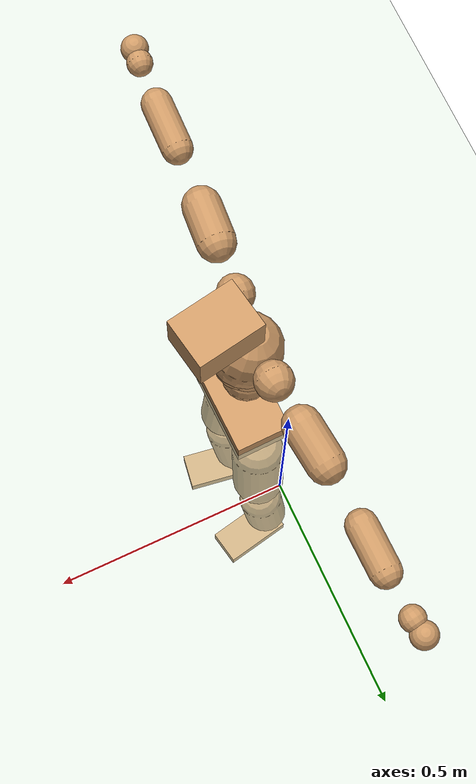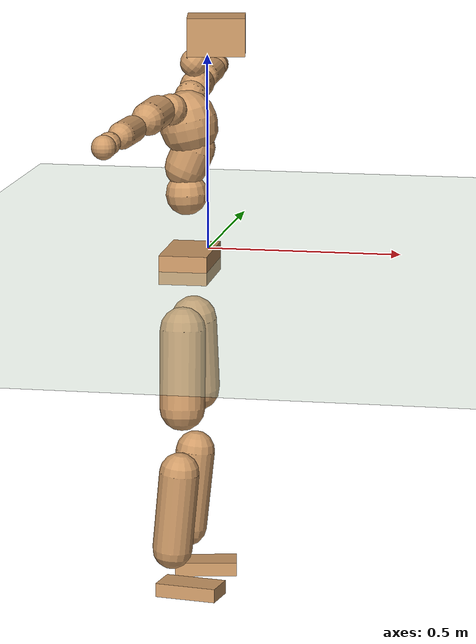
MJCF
<mujoco model="humanoid">
  <compiler coordinate="local" angle="radian"/>
  <default>
    <joint damping="0.0" armature="0.01" stiffness="0.0" limited="true"/>
    <geom conaffinity="1" condim="3" contype="7" margin="0.001" rgba="0.8 0.6 .4 1"/>
  </default>
  <asset>
    <texture type="skybox" builtin="gradient" rgb1=".4 .5 .6" rgb2="0 0 0" width="100" height="100"/>
    <texture builtin="flat" height="1278" mark="cross" markrgb="1 1 1" name="texgeom" random="0.01" rgb1="0.8 0.6 0.4" rgb2="0.8 0.6 0.4" type="cube" width="127"/>
    <texture builtin="checker" height="100" name="texplane" rgb1="0 0 0" rgb2="0.8 0.8 0.8" type="2d" width="100"/>
    <material name="MatPlane" reflectance="0.5" shininess="1" specular="1" texrepeat="60 60" texture="texplane"/>
    <material name="geom" texture="texgeom" texuniform="true"/>
  </asset>
  <worldbody>
    <light cutoff="100" diffuse="1 1 1" dir="-0 0 -1.3" directional="true" exponent="1" pos="0 0 1.3" specular=".1 .1 .1"/>
    <geom conaffinity="1" condim="3" name="floor" pos="0 0 0" rgba="0.8 0.9 0.8 1" size="100 100 .2" type="plane" material="MatPlane"/>
    <body name="Pelvis" pos="-0.0002 -0.1995 0.0137">
      <freejoint name="Pelvis"/>
      <geom type="box" contype="1" conaffinity="1" density="5359.375011" pos="-0.0066 -0.0001 -0.0117" size="0.0607 0.1022 0.0363" quat="0.9999 0.0000 0.0000 0.0104" name="Pelvis"/>
      <body name="L_Hip" pos="-0.0143 0.0632 -0.0844">
        <joint name="L_Hip_x" type="hinge" pos="0 0 0" axis="1 0 0" stiffness="1600" damping="160" armature="0.02" range="-180.0000 180.0000"/>
        <joint name="L_Hip_y" type="hinge" pos="0 0 0" axis="0 1 0" stiffness="1600" damping="160" armature="0.02" range="-180.0000 180.0000"/>
        <joint name="L_Hip_z" type="hinge" pos="0 0 0" axis="0 0 1" stiffness="1600" damping="160" armature="0.02" range="-180.0000 180.0000"/>
        <geom type="capsule" contype="1" conaffinity="1" density="2040.816327" size="0.0582" fromto="0.0018 0.0089 -0.0878 0.0055 0.0277 -0.2744" name="L_Hip"/>
        <body name="L_Knee" pos="0.0073 0.0366 -0.3621">
          <joint name="L_Knee_x" type="hinge" pos="0 0 0" axis="1 0 0" stiffness="1600" damping="160" armature="0.02" range="-180.0000 180.0000"/>
          <joint name="L_Knee_y" type="hinge" pos="0 0 0" axis="0 1 0" stiffness="1600" damping="160" armature="0.02" range="-180.0000 180.0000"/>
          <joint name="L_Knee_z" type="hinge" pos="0 0 0" axis="0 0 1" stiffness="1600" damping="160" armature="0.02" range="-180.0000 180.0000"/>
          <geom type="capsule" contype="1" conaffinity="1" density="1234.567901" size="0.0503" fromto="-0.0084 -0.0022 -0.0798 -0.0298 -0.0080 -0.2847" name="L_Knee"/>
          <body name="L_Ankle" pos="-0.0382 -0.0102 -0.3645">
            <joint name="L_Ankle_x" type="hinge" pos="0 0 0" axis="1 0 0" stiffness="1600" damping="160" armature="0.02" range="-180.0000 180.0000"/>
            <joint name="L_Ankle_y" type="hinge" pos="0 0 0" axis="0 1 0" stiffness="1600" damping="160" armature="0.02" range="-180.0000 180.0000"/>
            <joint name="L_Ankle_z" type="hinge" pos="0 0 0" axis="0 0 1" stiffness="1600" damping="160" armature="0.02" range="-180.0000 180.0000"/>
            <geom type="box" contype="1" conaffinity="1" density="1000.000012" pos="0.0552 0.0106 -0.0252" size="0.0797 0.0408 0.0178" quat="0.9955 0.0000 0.0000 0.0949" name="L_Ankle"/>
            <body name="L_Toe" pos="0.1105 0.0213 -0.0503">
              <joint name="L_Toe_x" type="hinge" pos="0 0 0" axis="1 0 0" stiffness="1000" damping="100" armature="0.02" range="-180.0000 180.0000"/>
              <joint name="L_Toe_y" type="hinge" pos="0 0 0" axis="0 1 0" stiffness="1000" damping="100" armature="0.02" range="-180.0000 180.0000"/>
              <joint name="L_Toe_z" type="hinge" pos="0 0 0" axis="0 0 1" stiffness="1000" damping="100" armature="0.02" range="-180.0000 180.0000"/>
              <geom type="box" contype="1" conaffinity="1" density="8925527.380041" pos="0.0000 0.0000 0.0265" size="0.0007 0.0021 0.001" quat="0.9948 0.0000 0.0000 0.1018" name="L_Toe"/>
            </body>
          </body>
        </body>
      </body>
      <body name="R_Hip" pos="-0.0123 -0.061 -0.0817">
        <joint name="R_Hip_x" type="hinge" pos="0 0 0" axis="1 0 0" stiffness="1600" damping="160" armature="0.02" range="-180.0000 180.0000"/>
        <joint name="R_Hip_y" type="hinge" pos="0 0 0" axis="0 1 0" stiffness="1600" damping="160" armature="0.02" range="-180.0000 180.0000"/>
        <joint name="R_Hip_z" type="hinge" pos="0 0 0" axis="0 0 1" stiffness="1600" damping="160" armature="0.02" range="-180.0000 180.0000"/>
        <geom type="capsule" contype="1" conaffinity="1" density="2040.816327" size="0.0575" fromto="0.0008 -0.0090 -0.0871 0.0025 -0.0294 -0.2849" name="R_Hip"/>
        <body name="R_Knee" pos="0.0033 -0.0383 -0.372">
          <joint name="R_Knee_x" type="hinge" pos="0 0 0" axis="1 0 0" stiffness="1600" damping="160" armature="0.02" range="-180.0000 180.0000"/>
          <joint name="R_Knee_y" type="hinge" pos="0 0 0" axis="0 1 0" stiffness="1600" damping="160" armature="0.02" range="-180.0000 180.0000"/>
          <joint name="R_Knee_z" type="hinge" pos="0 0 0" axis="0 0 1" stiffness="1600" damping="160" armature="0.02" range="-180.0000 180.0000"/>
          <geom type="capsule" contype="1" conaffinity="1" density="1234.567901" size="0.0508" fromto="-0.0082 0.0030 -0.0803 -0.0291 0.0105 -0.2839" name="R_Knee"/>
          <body name="R_Ankle" pos="-0.0373 0.0134 -0.3642">
            <joint name="R_Ankle_x" type="hinge" pos="0 0 0" axis="1 0 0" stiffness="1600" damping="160" armature="0.02" range="-180.0000 180.0000"/>
            <joint name="R_Ankle_y" type="hinge" pos="0 0 0" axis="0 1 0" stiffness="1600" damping="160" armature="0.02" range="-180.0000 180.0000"/>
            <joint name="R_Ankle_z" type="hinge" pos="0 0 0" axis="0 0 1" stiffness="1600" damping="160" armature="0.02" range="-180.0000 180.0000"/>
            <geom type="box" contype="1" conaffinity="1" density="1000.00004" pos="0.0560 -0.0087 -0.0210" size="0.0793 0.0417 0.0176" quat="0.9970 0.0000 0.0000 -0.0771" name="R_Ankle"/>
            <body name="R_Toe" pos="0.1121 -0.0174 -0.0419">
              <joint name="R_Toe_x" type="hinge" pos="0 0 0" axis="1 0 0" stiffness="1000" damping="100" armature="0.02" range="-180.0000 180.0000"/>
              <joint name="R_Toe_y" type="hinge" pos="0 0 0" axis="0 1 0" stiffness="1000" damping="100" armature="0.02" range="-180.0000 180.0000"/>
              <joint name="R_Toe_z" type="hinge" pos="0 0 0" axis="0 0 1" stiffness="1000" damping="100" armature="0.02" range="-180.0000 180.0000"/>
              <geom type="box" contype="1" conaffinity="1" density="8998715.888768" pos="0.0000 0.0000 0.0232" size="0.0007 0.002 0.001" quat="0.9977 0.0000 0.0000 -0.0672" name="R_Toe"/>
            </body>
          </body>
        </body>
      </body>
      <body name="Torso" pos="-0.0127 -0.003 0.0959">
        <joint name="Torso_x" type="hinge" pos="0 0 0" axis="1 0 0" stiffness="2000" damping="200" armature="0.02" range="-180.0000 180.0000"/>
        <joint name="Torso_y" type="hinge" pos="0 0 0" axis="0 1 0" stiffness="2000" damping="200" armature="0.02" range="-180.0000 180.0000"/>
        <joint name="Torso_z" type="hinge" pos="0 0 0" axis="0 0 1" stiffness="2000" damping="200" armature="0.02" range="-180.0000 180.0000"/>
        <geom type="capsule" contype="1" conaffinity="1" density="2040.816327" size="0.0527" fromto="-0.0012 0.0020 0.0679 -0.0013 0.0020 0.0699" name="Torso"/>
        <body name="Spine" pos="-0.0025 0.004 0.1378">
          <joint name="Spine_x" type="hinge" pos="0 0 0" axis="1 0 0" stiffness="2000" damping="200" armature="0.02" range="-180.0000 180.0000"/>
          <joint name="Spine_y" type="hinge" pos="0 0 0" axis="0 1 0" stiffness="2000" damping="200" armature="0.02" range="-180.0000 180.0000"/>
          <joint name="Spine_z" type="hinge" pos="0 0 0" axis="0 0 1" stiffness="2000" damping="200" armature="0.02" range="-180.0000 180.0000"/>
          <geom type="capsule" contype="1" conaffinity="1" density="2040.816327" size="0.053" fromto="0.0208 0.0015 0.0488 -0.0007 -0.0000 -0.0016" name="Spine"/>
          <body name="Chest" pos="0.0201 0.0014 0.0471">
            <joint name="Chest_x" type="hinge" pos="0 0 0" axis="1 0 0" stiffness="2000" damping="200" armature="0.02" range="-180.0000 180.0000"/>
            <joint name="Chest_y" type="hinge" pos="0 0 0" axis="0 1 0" stiffness="2000" damping="200" armature="0.02" range="-180.0000 180.0000"/>
            <joint name="Chest_z" type="hinge" pos="0 0 0" axis="0 0 1" stiffness="2000" damping="200" armature="0.02" range="-180.0000 180.0000"/>
            <geom type="capsule" contype="1" conaffinity="1" density="2040.816327" size="0.0737" fromto="-0.0164 -0.0009 0.0719 -0.0123 -0.0007 0.0541" name="Chest"/>
            <body name="Neck" pos="-0.0259 -0.0023 0.1815">
              <joint name="Neck_x" type="hinge" pos="0 0 0" axis="1 0 0" stiffness="1000" damping="100" armature="0.02" range="-180.0000 180.0000"/>
              <joint name="Neck_y" type="hinge" pos="0 0 0" axis="0 1 0" stiffness="1000" damping="100" armature="0.02" range="-180.0000 180.0000"/>
              <joint name="Neck_z" type="hinge" pos="0 0 0" axis="0 0 1" stiffness="1000" damping="100" armature="0.02" range="-180.0000 180.0000"/>
              <geom type="capsule" contype="1" conaffinity="1" density="1000" size="0.0346" fromto="0.0263 0.0037 0.0331 0.0275 0.0039 0.0346" name="Neck"/>
              <body name="Head" pos="0.0538 0.0077 0.0677">
                <joint name="Head_x" type="hinge" pos="0 0 0" axis="1 0 0" stiffness="1000" damping="100" armature="0.02" range="-180.0000 180.0000"/>
                <joint name="Head_y" type="hinge" pos="0 0 0" axis="0 1 0" stiffness="1000" damping="100" armature="0.02" range="-180.0000 180.0000"/>
                <joint name="Head_z" type="hinge" pos="0 0 0" axis="0 0 1" stiffness="1000" damping="100" armature="0.02" range="-180.0000 180.0000"/>
                <geom type="box" contype="1" conaffinity="1" density="2249.999988" pos="0.0279 0.0048 0.0349" size="0.0718 0.0533 0.0481" quat="0.9963 0.0000 0.0000 0.0856" name="Head"/>
              </body>
            </body>
            <body name="L_Thorax" pos="-0.0266 0.0589 0.0995">
              <joint name="L_Thorax_x" type="hinge" pos="0 0 0" axis="1 0 0" stiffness="1000" damping="100" armature="0.02" range="-180.0000 180.0000"/>
              <joint name="L_Thorax_y" type="hinge" pos="0 0 0" axis="0 1 0" stiffness="1000" damping="100" armature="0.02" range="-180.0000 180.0000"/>
              <joint name="L_Thorax_z" type="hinge" pos="0 0 0" axis="0 0 1" stiffness="1000" damping="100" armature="0.02" range="-180.0000 180.0000"/>
              <geom type="capsule" contype="1" conaffinity="1" density="1000" size="0.04" fromto="-0.0006 0.0366 0.0162 -0.0006 0.0323 0.0143" name="L_Thorax"/>
              <body name="L_Shoulder" pos="-0.0012 0.0689 0.0305">
                <joint name="L_Shoulder_x" type="hinge" pos="0 0 0" axis="1 0 0" stiffness="1000" damping="100" armature="0.02" range="-720.0000 720.0000"/>
                <joint name="L_Shoulder_y" type="hinge" pos="0 0 0" axis="0 1 0" stiffness="1000" damping="100" armature="0.02" range="-720.0000 720.0000"/>
                <joint name="L_Shoulder_z" type="hinge" pos="0 0 0" axis="0 0 1" stiffness="1000" damping="100" armature="0.02" range="-720.0000 720.0000"/>
                <geom type="capsule" contype="1" conaffinity="1" density="1000" size="0.0401" fromto="-0.0075 0.0695 -0.0046 -0.0171 0.1576 -0.0104" name="L_Shoulder"/>
                <body name="L_Elbow" pos="-0.0246 0.2271 -0.015">
                  <joint name="L_Elbow_x" type="hinge" pos="0 0 0" axis="1 0 0" stiffness="1000" damping="100" armature="0.02" range="-720.0000 720.0000"/>
                  <joint name="L_Elbow_y" type="hinge" pos="0 0 0" axis="0 1 0" stiffness="1000" damping="100" armature="0.02" range="-720.0000 720.0000"/>
                  <joint name="L_Elbow_z" type="hinge" pos="0 0 0" axis="0 0 1" stiffness="1000" damping="100" armature="0.02" range="-720.0000 720.0000"/>
                  <geom type="capsule" contype="1" conaffinity="1" density="1000" size="0.0328" fromto="-0.0006 0.0628 0.0023 -0.0014 0.1608 0.0058" name="L_Elbow"/>
                  <body name="L_Wrist" pos="-0.002 0.2235 0.0081">
                    <joint name="L_Wrist_x" type="hinge" pos="0 0 0" axis="1 0 0" stiffness="600" damping="60" armature="0.02" range="-180.0000 180.0000"/>
                    <joint name="L_Wrist_y" type="hinge" pos="0 0 0" axis="0 1 0" stiffness="600" damping="60" armature="0.02" range="-180.0000 180.0000"/>
                    <joint name="L_Wrist_z" type="hinge" pos="0 0 0" axis="0 0 1" stiffness="600" damping="60" armature="0.02" range="-180.0000 180.0000"/>
                    <geom type="capsule" contype="1" conaffinity="1" density="1000" size="0.0265" fromto="-0.0060 0.0345 -0.0044 -0.0063 0.0364 -0.0046" name="L_Wrist"/>
                    <body name="L_Hand" pos="-0.0123 0.0709 -0.009">
                      <joint name="L_Hand_x" type="hinge" pos="0 0 0" axis="1 0 0" stiffness="600" damping="60" armature="0.02" range="-180.0000 180.0000"/>
                      <joint name="L_Hand_y" type="hinge" pos="0 0 0" axis="0 1 0" stiffness="600" damping="60" armature="0.02" range="-180.0000 180.0000"/>
                      <joint name="L_Hand_z" type="hinge" pos="0 0 0" axis="0 0 1" stiffness="600" damping="60" armature="0.02" range="-180.0000 180.0000"/>
                      <geom type="sphere" contype="1" conaffinity="1" density="1000" size="0.0287" pos="0.0000 0.0000 0.0000" name="L_Hand"/>
                    </body>
                  </body>
                </body>
              </body>
            </body>
            <body name="R_Thorax" pos="-0.0335 -0.0614 0.0969">
              <joint name="R_Thorax_x" type="hinge" pos="0 0 0" axis="1 0 0" stiffness="1000" damping="100" armature="0.02" range="-180.0000 180.0000"/>
              <joint name="R_Thorax_y" type="hinge" pos="0 0 0" axis="0 1 0" stiffness="1000" damping="100" armature="0.02" range="-180.0000 180.0000"/>
              <joint name="R_Thorax_z" type="hinge" pos="0 0 0" axis="0 0 1" stiffness="1000" damping="100" armature="0.02" range="-180.0000 180.0000"/>
              <geom type="capsule" contype="1" conaffinity="1" density="1000" size="0.0394" fromto="-0.0030 -0.0370 0.0147 -0.0032 -0.0388 0.0154" name="R_Thorax"/>
              <body name="R_Shoulder" pos="-0.0062 -0.0758 0.0301">
                <joint name="R_Shoulder_x" type="hinge" pos="0 0 0" axis="1 0 0" stiffness="1000" damping="100" armature="0.02" range="-720.0000 720.0000"/>
                <joint name="R_Shoulder_y" type="hinge" pos="0 0 0" axis="0 1 0" stiffness="1000" damping="100" armature="0.02" range="-720.0000 720.0000"/>
                <joint name="R_Shoulder_z" type="hinge" pos="0 0 0" axis="0 0 1" stiffness="1000" damping="100" armature="0.02" range="-720.0000 720.0000"/>
                <geom type="capsule" contype="1" conaffinity="1" density="1000" size="0.0408" fromto="-0.0059 -0.0704 -0.0036 -0.0130 -0.1545 -0.0079" name="R_Shoulder"/>
                <body name="R_Elbow" pos="-0.0189 -0.225 -0.0115">
                  <joint name="R_Elbow_x" type="hinge" pos="0 0 0" axis="1 0 0" stiffness="1000" damping="100" armature="0.02" range="-720.0000 720.0000"/>
                  <joint name="R_Elbow_y" type="hinge" pos="0 0 0" axis="0 1 0" stiffness="1000" damping="100" armature="0.02" range="-720.0000 720.0000"/>
                  <joint name="R_Elbow_z" type="hinge" pos="0 0 0" axis="0 0 1" stiffness="1000" damping="100" armature="0.02" range="-720.0000 720.0000"/>
                  <geom type="capsule" contype="1" conaffinity="1" density="1000" size="0.0327" fromto="-0.0020 -0.0627 0.0010 -0.0054 -0.1692 0.0026" name="R_Elbow"/>
                  <body name="R_Wrist" pos="-0.0074 -0.2319 0.0036">
                    <joint name="R_Wrist_x" type="hinge" pos="0 0 0" axis="1 0 0" stiffness="600" damping="60" armature="0.02" range="-180.0000 180.0000"/>
                    <joint name="R_Wrist_y" type="hinge" pos="0 0 0" axis="0 1 0" stiffness="600" damping="60" armature="0.02" range="-180.0000 180.0000"/>
                    <joint name="R_Wrist_z" type="hinge" pos="0 0 0" axis="0 0 1" stiffness="600" damping="60" armature="0.02" range="-180.0000 180.0000"/>
                    <geom type="capsule" contype="1" conaffinity="1" density="1000" size="0.0273" fromto="-0.0045 -0.0349 -0.0031 -0.0047 -0.0369 -0.0033" name="R_Wrist"/>
                    <body name="R_Hand" pos="-0.0092 -0.0718 -0.0064">
                      <joint name="R_Hand_x" type="hinge" pos="0 0 0" axis="1 0 0" stiffness="600" damping="60" armature="0.02" range="-180.0000 180.0000"/>
                      <joint name="R_Hand_y" type="hinge" pos="0 0 0" axis="0 1 0" stiffness="600" damping="60" armature="0.02" range="-180.0000 180.0000"/>
                      <joint name="R_Hand_z" type="hinge" pos="0 0 0" axis="0 0 1" stiffness="600" damping="60" armature="0.02" range="-180.0000 180.0000"/>
                      <geom type="sphere" contype="1" conaffinity="1" density="1000" size="0.0289" pos="0.0000 0.0000 0.0000" name="R_Hand"/>
                    </body>
                  </body>
                </body>
              </body>
            </body>
          </body>
        </body>
      </body>
    </body>
  </worldbody>
  <actuator>
    <motor name="L_Hip_x" joint="L_Hip_x" gear="500"/>
    <motor name="L_Hip_y" joint="L_Hip_y" gear="500"/>
    <motor name="L_Hip_z" joint="L_Hip_z" gear="500"/>
    <motor name="L_Knee_x" joint="L_Knee_x" gear="500"/>
    <motor name="L_Knee_y" joint="L_Knee_y" gear="500"/>
    <motor name="L_Knee_z" joint="L_Knee_z" gear="500"/>
    <motor name="L_Ankle_x" joint="L_Ankle_x" gear="500"/>
    <motor name="L_Ankle_y" joint="L_Ankle_y" gear="500"/>
    <motor name="L_Ankle_z" joint="L_Ankle_z" gear="500"/>
    <motor name="L_Toe_x" joint="L_Toe_x" gear="500"/>
    <motor name="L_Toe_y" joint="L_Toe_y" gear="500"/>
    <motor name="L_Toe_z" joint="L_Toe_z" gear="500"/>
    <motor name="R_Hip_x" joint="R_Hip_x" gear="500"/>
    <motor name="R_Hip_y" joint="R_Hip_y" gear="500"/>
    <motor name="R_Hip_z" joint="R_Hip_z" gear="500"/>
    <motor name="R_Knee_x" joint="R_Knee_x" gear="500"/>
    <motor name="R_Knee_y" joint="R_Knee_y" gear="500"/>
    <motor name="R_Knee_z" joint="R_Knee_z" gear="500"/>
    <motor name="R_Ankle_x" joint="R_Ankle_x" gear="500"/>
    <motor name="R_Ankle_y" joint="R_Ankle_y" gear="500"/>
    <motor name="R_Ankle_z" joint="R_Ankle_z" gear="500"/>
    <motor name="R_Toe_x" joint="R_Toe_x" gear="500"/>
    <motor name="R_Toe_y" joint="R_Toe_y" gear="500"/>
    <motor name="R_Toe_z" joint="R_Toe_z" gear="500"/>
    <motor name="Torso_x" joint="Torso_x" gear="500"/>
    <motor name="Torso_y" joint="Torso_y" gear="500"/>
    <motor name="Torso_z" joint="Torso_z" gear="500"/>
    <motor name="Spine_x" joint="Spine_x" gear="500"/>
    <motor name="Spine_y" joint="Spine_y" gear="500"/>
    <motor name="Spine_z" joint="Spine_z" gear="500"/>
    <motor name="Chest_x" joint="Chest_x" gear="500"/>
    <motor name="Chest_y" joint="Chest_y" gear="500"/>
    <motor name="Chest_z" joint="Chest_z" gear="500"/>
    <motor name="Neck_x" joint="Neck_x" gear="500"/>
    <motor name="Neck_y" joint="Neck_y" gear="500"/>
    <motor name="Neck_z" joint="Neck_z" gear="500"/>
    <motor name="Head_x" joint="Head_x" gear="500"/>
    <motor name="Head_y" joint="Head_y" gear="500"/>
    <motor name="Head_z" joint="Head_z" gear="500"/>
    <motor name="L_Thorax_x" joint="L_Thorax_x" gear="500"/>
    <motor name="L_Thorax_y" joint="L_Thorax_y" gear="500"/>
    <motor name="L_Thorax_z" joint="L_Thorax_z" gear="500"/>
    <motor name="L_Shoulder_x" joint="L_Shoulder_x" gear="500"/>
    <motor name="L_Shoulder_y" joint="L_Shoulder_y" gear="500"/>
    <motor name="L_Shoulder_z" joint="L_Shoulder_z" gear="500"/>
    <motor name="L_Elbow_x" joint="L_Elbow_x" gear="500"/>
    <motor name="L_Elbow_y" joint="L_Elbow_y" gear="500"/>
    <motor name="L_Elbow_z" joint="L_Elbow_z" gear="500"/>
    <motor name="L_Wrist_x" joint="L_Wrist_x" gear="500"/>
    <motor name="L_Wrist_y" joint="L_Wrist_y" gear="500"/>
    <motor name="L_Wrist_z" joint="L_Wrist_z" gear="500"/>
    <motor name="L_Hand_x" joint="L_Hand_x" gear="500"/>
    <motor name="L_Hand_y" joint="L_Hand_y" gear="500"/>
    <motor name="L_Hand_z" joint="L_Hand_z" gear="500"/>
    <motor name="R_Thorax_x" joint="R_Thorax_x" gear="500"/>
    <motor name="R_Thorax_y" joint="R_Thorax_y" gear="500"/>
    <motor name="R_Thorax_z" joint="R_Thorax_z" gear="500"/>
    <motor name="R_Shoulder_x" joint="R_Shoulder_x" gear="500"/>
    <motor name="R_Shoulder_y" joint="R_Shoulder_y" gear="500"/>
    <motor name="R_Shoulder_z" joint="R_Shoulder_z" gear="500"/>
    <motor name="R_Elbow_x" joint="R_Elbow_x" gear="500"/>
    <motor name="R_Elbow_y" joint="R_Elbow_y" gear="500"/>
    <motor name="R_Elbow_z" joint="R_Elbow_z" gear="500"/>
    <motor name="R_Wrist_x" joint="R_Wrist_x" gear="500"/>
    <motor name="R_Wrist_y" joint="R_Wrist_y" gear="500"/>
    <motor name="R_Wrist_z" joint="R_Wrist_z" gear="500"/>
    <motor name="R_Hand_x" joint="R_Hand_x" gear="500"/>
    <motor name="R_Hand_y" joint="R_Hand_y" gear="500"/>
    <motor name="R_Hand_z" joint="R_Hand_z" gear="500"/>
  </actuator>
  <contact>
    <exclude body1="Torso" body2="Chest"/>
    <exclude body1="Head" body2="Chest"/>
    <exclude body1="R_Knee" body2="R_Toe"/>
    <exclude body1="R_Knee" body2="L_Ankle"/>
    <exclude body1="R_Knee" body2="L_Toe"/>
    <exclude body1="L_Knee" body2="L_Toe"/>
    <exclude body1="L_Knee" body2="R_Ankle"/>
    <exclude body1="L_Knee" body2="R_Toe"/>
    <exclude body1="L_Shoulder" body2="Chest"/>
    <exclude body1="R_Shoulder" body2="Chest"/>
  </contact>
  <sensor/>
  <size njmax="700" nconmax="700"/>
</mujoco>
